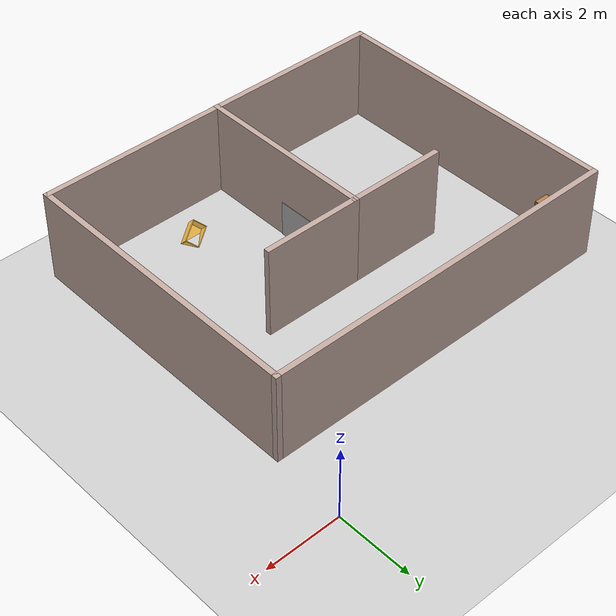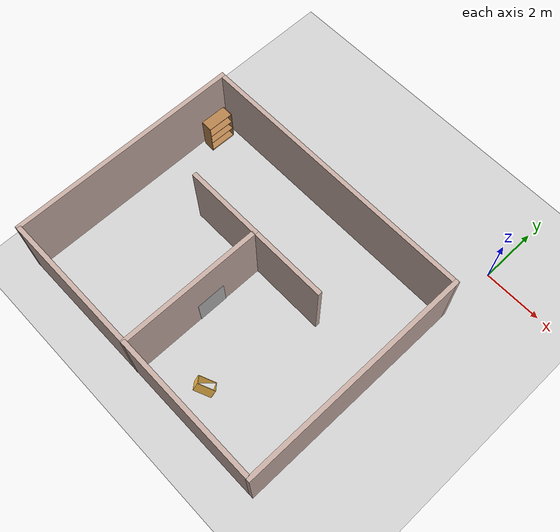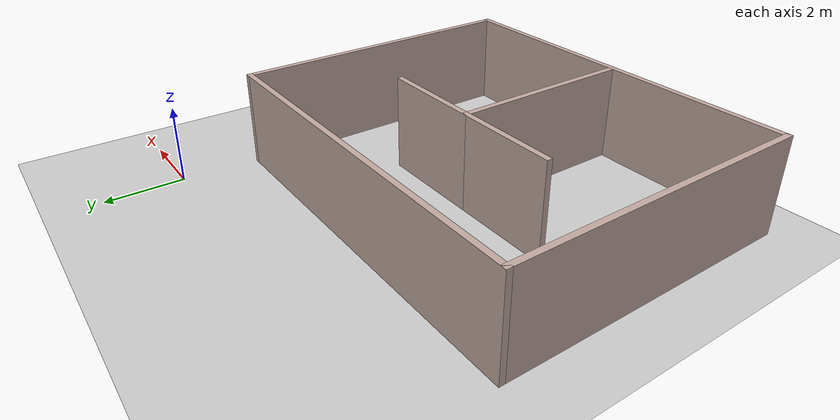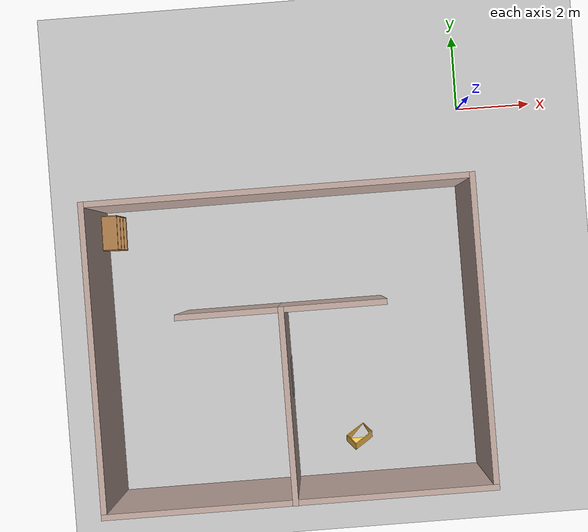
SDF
<sdf version="1.6">
 <world name="default">
  <model name="ground_plane">
   <static>1</static>
   <link name="link">
    <collision name="collision">
     <geometry><plane><normal>0 0 1</normal><size>100 100</size></plane></geometry>
     <surface><friction><ode><mu>100</mu><mu2>50</mu2></ode></friction></surface>
    </collision>
    <visual name="visual">
     <cast_shadows>0</cast_shadows>
     <geometry><plane><normal>0 0 1</normal><size>100 100</size></plane></geometry>
     <material>
      <script><uri>file://media/materials/scripts/gazebo.material</uri><name>Gazebo/Grey</name></script>
     </material>
    </visual>
   </link>
  </model>
  <model name="empty_room_colored_walls">
   <pose>-5.06103 -5.97507 0 -0.005795 0 0</pose>
   <link name="Wall_62">
    <collision name="Wall_62_Collision">
     <geometry><box><size>10 0.15 2.5</size></box></geometry>
     <pose>0 0 1.25 0 -0 0</pose>
    </collision>
    <visual name="Wall_62_Visual">
     <pose>0 0 1.25 0 -0 0</pose>
     <geometry><box><size>10 0.15 2.5</size></box></geometry>
     <material>
      <script><uri>file://media/materials/scripts/gazebo.material</uri><name>Gazebo/Grey</name></script>
      <ambient>0.760784 0.662745 0.627451 1</ambient>
     </material>
    </visual>
    <pose>0 -3.92179 0 0 -0 0</pose>
   </link>
   <link name="Wall_63">
    <collision name="Wall_63_Collision">
     <geometry><box><size>8 0.15 2.5</size></box></geometry>
     <pose>0 0 1.25 0 -0 0</pose>
    </collision>
    <visual name="Wall_63_Visual">
     <pose>0 0 1.25 0 -0 0</pose>
     <geometry><box><size>8 0.15 2.5</size></box></geometry>
     <material>
      <script><uri>file://media/materials/scripts/gazebo.material</uri><name>Gazebo/Grey</name></script>
      <ambient>0.760784 0.662745 0.627451 1</ambient>
     </material>
    </visual>
    <pose>4.925 0.003206 0 0 -0 1.5708</pose>
   </link>
   <link name="Wall_64">
    <collision name="Wall_64_Collision">
     <geometry><box><size>10 0.15 2.5</size></box></geometry>
     <pose>0 0 1.25 0 -0 0</pose>
    </collision>
    <visual name="Wall_64_Visual">
     <pose>0 0 1.25 0 -0 0</pose>
     <geometry><box><size>10 0.15 2.5</size></box></geometry>
     <material>
      <script><uri>file://media/materials/scripts/gazebo.material</uri><name>Gazebo/Grey</name></script>
      <ambient>0.760784 0.662745 0.627451 1</ambient>
     </material>
    </visual>
    <pose>0 3.92821 0 0 -0 3.14159</pose>
   </link>
   <link name="Wall_65">
    <collision name="Wall_65_Collision">
     <geometry><box><size>8 0.15 2.5</size></box></geometry>
     <pose>0 0 1.25 0 -0 0</pose>
    </collision>
    <visual name="Wall_65_Visual">
     <pose>0 0 1.25 0 -0 0</pose>
     <geometry><box><size>8 0.15 2.5</size></box></geometry>
     <material>
      <script><uri>file://media/materials/scripts/gazebo.material</uri><name>Gazebo/Grey</name></script>
      <ambient>0.760784 0.662745 0.627451 1</ambient>
     </material>
    </visual>
    <pose>-4.925 0.003206 0 0 0 -1.5708</pose>
   </link>
   <link name="Wall_70">
    <collision name="Wall_70_Collision">
     <geometry><box><size>5 0.15 2.5</size></box></geometry>
     <pose>0 0 1.25 0 -0 0</pose>
    </collision>
    <visual name="Wall_70_Visual">
     <pose>0 0 1.25 0 -0 0</pose>
     <geometry><box><size>5 0.15 2.5</size></box></geometry>
     <material>
      <script><uri>file://media/materials/scripts/gazebo.material</uri><name>Gazebo/Grey</name></script>
      <ambient>0.760784 0.662745 0.627451 1</ambient>
     </material>
    </visual>
    <pose>-0.121943 -1.50321 0 0 -0 1.5708</pose>
   </link>
   <link name="Wall_71">
    <collision name="Wall_71_Collision">
     <geometry><box><size>2.75 0.15 2.5</size></box></geometry>
     <pose>0 0 1.25 0 -0 0</pose>
    </collision>
    <visual name="Wall_71_Visual">
     <pose>0 0 1.25 0 -0 0</pose>
     <geometry><box><size>2.75 0.15 2.5</size></box></geometry>
     <material>
      <script><uri>file://media/materials/scripts/gazebo.material</uri><name>Gazebo/Grey</name></script>
      <ambient>0.760784 0.662745 0.627451 1</ambient>
     </material>
    </visual>
    <pose>1.17806 0.921794 0 0 -0 0</pose>
   </link>
   <link name="Wall_73">
    <collision name="Wall_73_Collision">
     <geometry><box><size>2.75 0.15 2.5</size></box></geometry>
     <pose>0 0 1.25 0 -0 0</pose>
    </collision>
    <visual name="Wall_73_Visual">
     <pose>0 0 1.25 0 -0 0</pose>
     <geometry><box><size>2.75 0.15 2.5</size></box></geometry>
     <material>
      <script><uri>file://media/materials/scripts/gazebo.material</uri><name>Gazebo/Grey</name></script>
      <ambient>0.760784 0.662745 0.627451 1</ambient>
     </material>
    </visual>
    <pose>-1.42194 0.921794 0 0 -0 3.14159</pose>
   </link>
   <static>1</static>
  </model>
  <model name="bookshelf">
   <static>1</static>
   <link name="link">
    <inertial><mass>1</mass></inertial>
    <collision name="back">
     <pose>0 0.005 0.6 0 -0 0</pose>
     <geometry><box><size>0.9 0.01 1.2</size></box></geometry>
    </collision>
    <visual name="visual1">
     <pose>0 0.005 0.6 0 -0 0</pose>
     <geometry><box><size>0.9 0.01 1.2</size></box></geometry>
     <material>
      <script><uri>file://media/materials/scripts/gazebo.material</uri><name>Gazebo/Wood</name></script>
     </material>
    </visual>
    <collision name="left_side">
     <pose>0.45 -0.195 0.6 0 -0 0</pose>
     <geometry><box><size>0.02 0.4 1.2</size></box></geometry>
    </collision>
    <visual name="visual2">
     <pose>0.45 -0.195 0.6 0 -0 0</pose>
     <geometry><box><size>0.02 0.4 1.2</size></box></geometry>
     <material>
      <script><uri>file://media/materials/scripts/gazebo.material</uri><name>Gazebo/Wood</name></script>
     </material>
    </visual>
    <collision name="right_side">
     <pose>-0.45 -0.195 0.6 0 -0 0</pose>
     <geometry><box><size>0.02 0.4 1.2</size></box></geometry>
    </collision>
    <visual name="visual3">
     <pose>-0.45 -0.195 0.6 0 -0 0</pose>
     <geometry><box><size>0.02 0.4 1.2</size></box></geometry>
     <material>
      <script><uri>file://media/materials/scripts/gazebo.material</uri><name>Gazebo/Wood</name></script>
     </material>
    </visual>
    <collision name="bottom">
     <pose>0 -0.195 0.03 0 -0 0</pose>
     <geometry><box><size>0.88 0.4 0.06</size></box></geometry>
    </collision>
    <visual name="visual4">
     <pose>0 -0.195 0.03 0 -0 0</pose>
     <geometry><box><size>0.88 0.4 0.06</size></box></geometry>
     <material>
      <script><uri>file://media/materials/scripts/gazebo.material</uri><name>Gazebo/Wood</name></script>
     </material>
    </visual>
    <collision name="top">
     <pose>0 -0.195 1.19 0 -0 0</pose>
     <geometry><box><size>0.88 0.4 0.02</size></box></geometry>
    </collision>
    <visual name="visual5">
     <pose>0 -0.195 1.19 0 -0 0</pose>
     <geometry><box><size>0.88 0.4 0.02</size></box></geometry>
     <material>
      <script><uri>file://media/materials/scripts/gazebo.material</uri><name>Gazebo/Wood</name></script>
     </material>
    </visual>
    <collision name="low_shelf">
     <pose>0 -0.195 0.43 0 -0 0</pose>
     <geometry><box><size>0.88 0.4 0.02</size></box></geometry>
    </collision>
    <visual name="visual6">
     <pose>0 -0.195 0.43 0 -0 0</pose>
     <geometry><box><size>0.88 0.4 0.02</size></box></geometry>
     <material>
      <script><uri>file://media/materials/scripts/gazebo.material</uri><name>Gazebo/Wood</name></script>
     </material>
    </visual>
    <collision name="high_shelf">
     <pose>0 -0.195 0.8 0 -0 0</pose>
     <geometry><box><size>0.88 0.4 0.02</size></box></geometry>
    </collision>
    <visual name="visual7">
     <pose>0 -0.195 0.8 0 -0 0</pose>
     <geometry><box><size>0.88 0.4 0.02</size></box></geometry>
     <material>
      <script><uri>file://media/materials/scripts/gazebo.material</uri><name>Gazebo/Wood</name></script>
     </material>
    </visual>
   </link>
   <pose>-9.80012 -2.72902 0 0 -0 1.5503</pose>
  </model>
  <model name="Wall_Cabinet_24x15M_0">
   <link name="Wall_41">
    <pose>0 0 0.01 0 -0 0</pose>
    <inertial>
     <mass>1.4983</mass>
     <inertia><ixx>0.011</ixx><iyy>0.0571</iyy><izz>0.0462</izz><ixy>0</ixy><ixz>0</ixz><iyz>0</iyz></inertia>
    </inertial>
    <collision name="Wall_41_Collision"><geometry><box><size>0.608 0.296 0.02</size></box></geometry></collision>
    <visual name="Wall_41_Visual">
     <geometry><box><size>0.608 0.296 0.02</size></box></geometry>
     <material>
      <script><uri>file://media/materials/scripts/gazebo.material</uri><name>Gazebo/Grey</name></script>
      <ambient>1 0.764706 0.305882 1</ambient>
     </material>
    </visual>
    <pose>0.000184 0.181953 0 0 -0 0</pose>
   </link>
   <joint name="41_43" type="fixed">
    <pose>-0.304 0 0 0 -0 0</pose>
    <parent>Wall_43</parent>
    <child>Wall_41</child>
    <axis>
     <xyz>0 0 1</xyz>
     <use_parent_model_frame>0</use_parent_model_frame>
     <limit><lower>-1e+16</lower><upper>1e+16</upper></limit>
    </axis>
   </joint>
   <joint name="41_45" type="fixed">
    <pose>0.304 0 0 0 -0 0</pose>
    <parent>Wall_45</parent>
    <child>Wall_41</child>
    <axis>
     <xyz>0 0 1</xyz>
     <use_parent_model_frame>0</use_parent_model_frame>
     <limit><lower>-1e+16</lower><upper>1e+16</upper></limit>
    </axis>
   </joint>
   <joint name="41_49" type="fixed">
    <pose>0 -0.148 0 0 -0 0</pose>
    <parent>Wall_49</parent>
    <child>Wall_41</child>
    <axis>
     <xyz>0 0 1</xyz>
     <use_parent_model_frame>0</use_parent_model_frame>
     <limit><lower>-1e+16</lower><upper>1e+16</upper></limit>
    </axis>
   </joint>
   <link name="Wall_43">
    <pose>-0.294 0 0.192 0 -0 0</pose>
    <inertial>
     <mass>0.9463</mass>
     <inertia><ixx>0.0069</ixx><iyy>0.0185</iyy><izz>0.0117</izz><ixy>0</ixy><ixz>0</ixz><iyz>0</iyz></inertia>
    </inertial>
    <collision name="Wall_43_Collision"><geometry><box><size>0.02 0.296 0.384</size></box></geometry></collision>
    <visual name="Wall_43_Visual">
     <geometry><box><size>0.02 0.296 0.384</size></box></geometry>
     <material>
      <script><uri>file://media/materials/scripts/gazebo.material</uri><name>Gazebo/Grey</name></script>
      <ambient>1 0.764706 0.305882 1</ambient>
     </material>
    </visual>
   </link>
   <link name="Wall_45">
    <pose>0.294 0 0.192 0 -0 0</pose>
    <inertial>
     <mass>0.9463</mass>
     <inertia><ixx>0.0069</ixx><iyy>0.0185</iyy><izz>0.0117</izz><ixy>0</ixy><ixz>0</ixz><iyz>0</iyz></inertia>
    </inertial>
    <collision name="Wall_45_Collision"><geometry><box><size>0.02 0.296 0.384</size></box></geometry></collision>
    <visual name="Wall_45_Visual">
     <geometry><box><size>0.02 0.296 0.384</size></box></geometry>
     <material>
      <script><uri>file://media/materials/scripts/gazebo.material</uri><name>Gazebo/Grey</name></script>
      <ambient>1 0.764706 0.305882 1</ambient>
     </material>
    </visual>
   </link>
   <link name="Wall_47">
    <pose>0 0 0.374 0 -0 0</pose>
    <inertial>
     <mass>1.4983</mass>
     <inertia><ixx>0.011</ixx><iyy>0.0571</iyy><izz>0.0462</izz><ixy>0</ixy><ixz>0</ixz><iyz>0</iyz></inertia>
    </inertial>
    <collision name="Wall_47_Collision"><geometry><box><size>0.608 0.296 0.02</size></box></geometry></collision>
    <visual name="Wall_47_Visual">
     <geometry><box><size>0.608 0.296 0.02</size></box></geometry>
     <material>
      <script><uri>file://media/materials/scripts/gazebo.material</uri><name>Gazebo/Grey</name></script>
      <ambient>1 0.764706 0.305882 1</ambient>
     </material>
    </visual>
   </link>
   <joint name="47_43" type="fixed">
    <pose>-0.304 0 0 0 -0 0</pose>
    <parent>Wall_43</parent>
    <child>Wall_47</child>
    <axis>
     <xyz>0 0 1</xyz>
     <use_parent_model_frame>0</use_parent_model_frame>
     <limit><lower>-1e+16</lower><upper>1e+16</upper></limit>
    </axis>
   </joint>
   <joint name="47_45" type="fixed">
    <pose>0.304 0 0 0 -0 0</pose>
    <parent>Wall_45</parent>
    <child>Wall_47</child>
    <axis>
     <xyz>0 0 1</xyz>
     <use_parent_model_frame>0</use_parent_model_frame>
     <limit><lower>-1e+16</lower><upper>1e+16</upper></limit>
    </axis>
   </joint>
   <joint name="47_49" type="fixed">
    <pose>0 -0.148 0 0 -0 0</pose>
    <parent>Wall_49</parent>
    <child>Wall_47</child>
    <axis>
     <xyz>0 0 1</xyz>
     <use_parent_model_frame>0</use_parent_model_frame>
     <limit><lower>-1e+16</lower><upper>1e+16</upper></limit>
    </axis>
   </joint>
   <link name="Wall_49">
    <pose>0 -0.138 0.19 0 -0 0</pose>
    <inertial>
     <mass>1.9108</mass>
     <inertia><ixx>0.0231</ixx><iyy>0.0582</iyy><izz>0.0811</izz><ixy>0</ixy><ixz>0</ixz><iyz>0</iyz></inertia>
    </inertial>
    <collision name="Wall_49_Collision"><geometry><box><size>0.604 0.02 0.38</size></box></geometry></collision>
    <visual name="Wall_49_Visual">
     <geometry><box><size>0.604 0.02 0.38</size></box></geometry>
     <material>
      <script><uri>file://media/materials/scripts/gazebo.material</uri><name>Gazebo/Grey</name></script>
      <ambient>1 0.764706 0.305882 1</ambient>
     </material>
    </visual>
   </link>
   <joint name="49_43" type="fixed">
    <pose>-0.302 0 0 0 -0 0</pose>
    <parent>Wall_41</parent>
    <child>Wall_49</child>
    <axis>
     <xyz>0 1 0</xyz>
     <use_parent_model_frame>0</use_parent_model_frame>
     <limit><lower>-1e+16</lower><upper>1e+16</upper></limit>
    </axis>
   </joint>
   <joint name="49_45" type="fixed">
    <pose>0.302 0 0 0 -0 0</pose>
    <parent>Wall_45</parent>
    <child>Wall_49</child>
    <axis>
     <xyz>0 1 0</xyz>
     <use_parent_model_frame>0</use_parent_model_frame>
     <limit><lower>-1e+16</lower><upper>1e+16</upper></limit>
    </axis>
   </joint>
   <static>1</static>
   <pose>-3.51303 -8.70948 0 0.929942 0.424853 0.504855</pose>
  </model>
  <model name="electric_plug_1_4">
   <link name="link_0">
    <pose>4e-06 0 0 0 -0 0</pose>
    <inertial>
     <mass>1</mass>
     <inertia>
      <ixx>0.166667</ixx>
      <ixy>0</ixy>
      <ixz>0</ixz>
      <iyy>0.166667</iyy>
      <iyz>0</iyz>
      <izz>0.166667</izz>
     </inertia>
    </inertial>
    <visual name="visual">
     <geometry><box><size>0.01 1 1</size></box></geometry>
     <material>
      <lighting>1</lighting>
      <script>
       <uri>model://electric_plug_2_S/materials/scripts</uri>
       <uri>model://electric_plug_2_S/materials/textures</uri>
       <name>Electric/Plug2S</name>
      </script>
      <ambient>0.3 0.3 0.3 1</ambient>
      <diffuse>0.7 0.7 0.7 1</diffuse>
      <specular>0.01 0.01 0.01 1</specular>
      <emissive>1 1 1 1</emissive>
     </material>
     <cast_shadows>0</cast_shadows>
    </visual>
    <collision name="collision">
     <geometry><box><size>0.01 1 1</size></box></geometry>
     <surface>
      <friction>
       <ode><mu>1</mu><mu2>1</mu2><fdir1>0 0 0</fdir1><slip1>0</slip1><slip2>0</slip2></ode>
       <torsional>
        <coefficient>1</coefficient>
        <patch_radius>0</patch_radius>
        <surface_radius>0</surface_radius>
        <use_patch_radius>1</use_patch_radius>
        <ode><slip>0</slip></ode>
       </torsional>
      </friction>
      <bounce><restitution_coefficient>0</restitution_coefficient><threshold>1e+06</threshold></bounce>
      <contact>
       <collide_without_contact>0</collide_without_contact>
       <collide_without_contact_bitmask>1</collide_without_contact_bitmask>
       <collide_bitmask>1</collide_bitmask>
       <ode>
        <soft_cfm>0</soft_cfm>
        <soft_erp>0.2</soft_erp>
        <kp>1e+13</kp>
        <kd>1</kd>
        <max_vel>0.01</max_vel>
        <min_depth>0</min_depth>
       </ode>
       <bullet>
        <split_impulse>1</split_impulse>
        <split_impulse_penetration_threshold>-0.01</split_impulse_penetration_threshold>
        <soft_cfm>0</soft_cfm>
        <soft_erp>0.2</soft_erp>
        <kp>1e+13</kp>
        <kd>1</kd>
       </bullet>
      </contact>
     </surface>
    </collision>
   </link>
   <static>0</static>
   <pose>-5.10271 -6.97588 0.5 0 1e-06 4e-06</pose>
  </model>
 </world>
</sdf>
